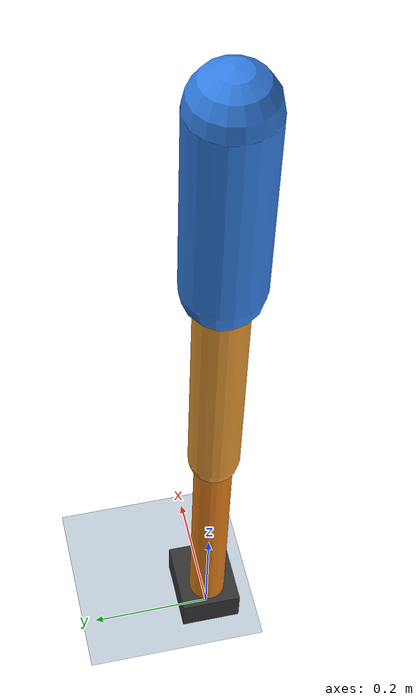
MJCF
<mujoco model="balancing_leg">
  <compiler angle="radian" autolimits="true"/>
  <option timestep="0.002" integrator="implicitfast"/>
  <statistic center="0 0 0.6" extent="1.5"/>

  <worldbody>
    <light pos="0 -2 3" dir="0 1 -1"/>
    <geom name="floor" type="plane" size="5 5 0.1" rgba="0.75 0.8 0.85 1"/>

    <!-- The foot is the root. It can slide in x and z and rotate about y, so the motion stays in a 2D plane. -->
    <body name="foot" pos="0 0 0.03">
      <joint name="root_x" type="slide" axis="1 0 0"/>
      <joint name="root_z" type="slide" axis="0 0 1"/>
      <joint name="root_pitch" type="hinge" axis="0 1 0"/>
      <!-- Foot length is the first thing to experiment with: smaller = harder to balance -->
      <geom name="foot_geom" type="box" size="0.06 0.05 0.03" pos="0.02 0 0" mass="0.8" rgba="0.2 0.2 0.2 1"/>

      <body name="shank" pos="0 0 0.03">
        <joint name="ankle" type="hinge" axis="0 1 0" range="-0.8 0.8" damping="1" armature="0.02"/>
        <geom type="capsule" fromto="0 0 0 0 0 0.4" size="0.03" mass="1.0" rgba="0.9 0.5 0.1 1"/>

        <body name="thigh" pos="0 0 0.4">
          <joint name="knee" type="hinge" axis="0 1 0" range="0 2.2" damping="1" armature="0.02"/>
          <geom type="capsule" fromto="0 0 0 0 0 0.4" size="0.04" mass="1.5" rgba="0.9 0.6 0.2 1"/>

          <body name="torso" pos="0 0 0.4">
            <joint name="hip" type="hinge" axis="0 1 0" range="-1.5 1.5" damping="1" armature="0.02"/>
            <geom type="capsule" fromto="0 0 0 0 0 0.3" size="0.06" mass="4.0" rgba="0.2 0.5 0.9 1"/>
          </body>
        </body>
      </body>
    </body>
  </worldbody>

  <!-- Each motor tracks a target angle (ctrl) with a spring (kp) and a damper (kv), with limited torque -->
  <actuator>
    <position name="ankle" joint="ankle" kp="150" kv="15" ctrlrange="-0.8 0.8" forcerange="-25 25"/>
    <position name="knee"  joint="knee"  kp="150" kv="15" ctrlrange="0 2.2"    forcerange="-60 60"/>
    <position name="hip"   joint="hip"   kp="150" kv="15" ctrlrange="-1.5 1.5" forcerange="-60 60"/>
  </actuator>
</mujoco>
